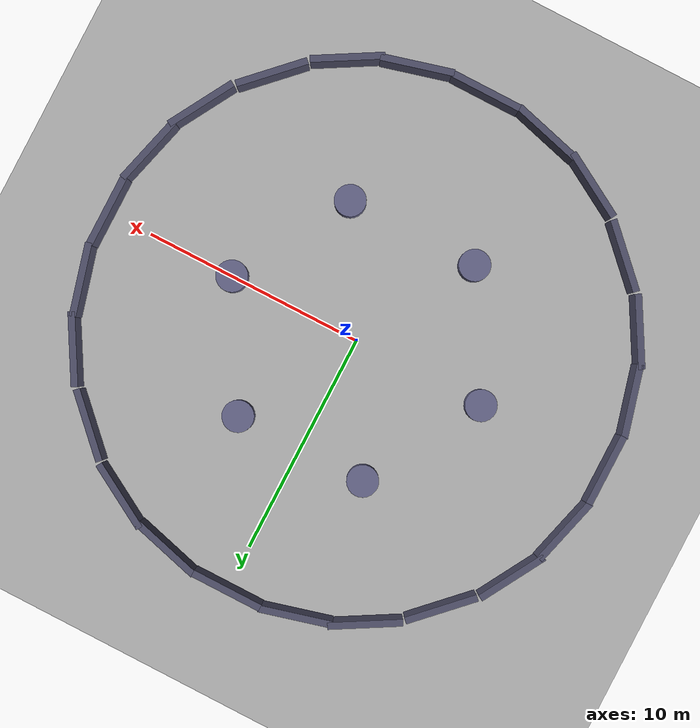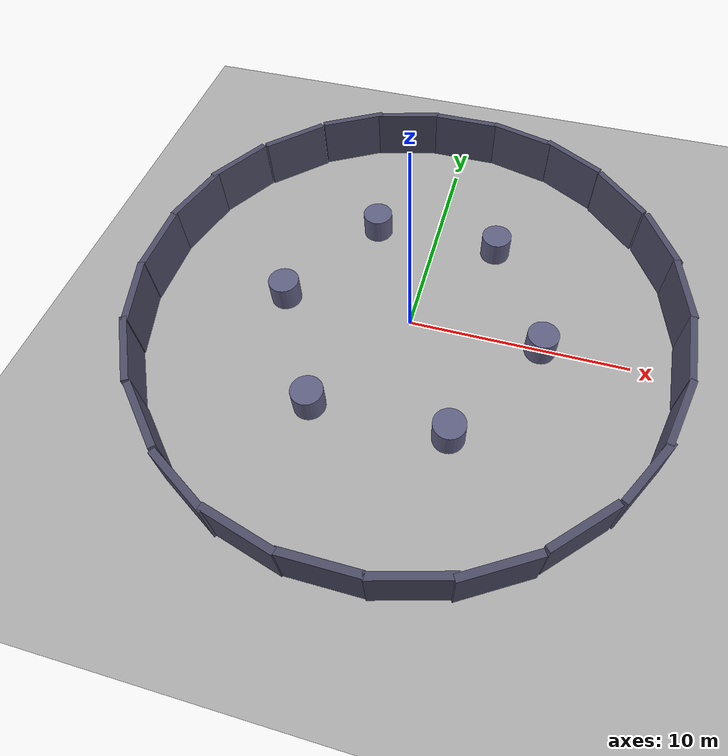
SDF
<?xml version="1.0" ?>
<sdf version="1.6">
  <world name="pursuit_world">

    <gui fullscreen="0">
      <camera name="user_camera">
        <pose>0 0 55 0 1.5707 1.5707</pose>
        <view_controller>orbit</view_controller>
        <projection_type>orthographic</projection_type>
      </camera>
    </gui>

    <physics name="1ms" type="ignored">
      <max_step_size>0.001</max_step_size>
      <real_time_factor>1.5</real_time_factor>
      <real_time_update_rate>1000</real_time_update_rate>
    </physics>

    <plugin filename="gz-sim-physics-system"           name="gz::sim::systems::Physics"/>
    <plugin filename="gz-sim-user-commands-system"     name="gz::sim::systems::UserCommands"/>
    <plugin filename="gz-sim-scene-broadcaster-system" name="gz::sim::systems::SceneBroadcaster"/>
    <plugin filename="gz-sim-contact-system"           name="gz::sim::systems::Contact"/>
    <plugin filename="gz-sim-sensors-system"           name="gz::sim::systems::Sensors">
      <render_engine>ogre2</render_engine>
    </plugin>

    <light type="directional" name="sun">
      <cast_shadows>true</cast_shadows>
      <pose>0 0 20 0 0 0</pose>
      <diffuse>0.85 0.85 0.85 1</diffuse>
      <specular>0.2 0.2 0.2 1</specular>
      <attenuation>
        <range>1000</range>
        <constant>0.9</constant>
        <linear>0.01</linear>
        <quadratic>0.001</quadratic>
      </attenuation>
      <direction>-0.5 0.1 -0.9</direction>
    </light>

    <!-- Ground -->
    <model name="ground_plane">
      <static>true</static>
      <link name="link">
        <collision name="collision">
          <geometry><plane><normal>0 0 1</normal><size>200 200</size></plane></geometry>
        </collision>
        <visual name="visual">
          <geometry><plane><normal>0 0 1</normal><size>200 200</size></plane></geometry>
          <material>
            <ambient>0.68 0.68 0.68 1</ambient>
            <diffuse>0.68 0.68 0.68 1</diffuse>
            <specular>0.68 0.68 0.68 1</specular>
          </material>
        </visual>
      </link>
    </model>

    <model name="circular_boundary">
      <static>true</static>

      <!-- seg 0: angle=0.000 pos=(11.897, 0.000) rot=1.571 -->
      <link name="seg_0"><pose>11.897 0.000 1.25 0 0 1.571</pose>
        <collision name="c"><geometry><box><size>3.2 0.3 2.5</size></box></geometry></collision>
        <visual name="v"><geometry><box><size>3.2 0.3 2.5</size></box></geometry>
          <material><ambient>0.30 0.30 0.40 1</ambient><diffuse>0.30 0.30 0.40 1</diffuse></material></visual>
      </link>

      <!-- seg 1: angle=0.262 pos=(11.530, 3.086) rot=1.833 -->
      <link name="seg_1"><pose>11.530 3.086 1.25 0 0 1.833</pose>
        <collision name="c"><geometry><box><size>3.2 0.3 2.5</size></box></geometry></collision>
        <visual name="v"><geometry><box><size>3.2 0.3 2.5</size></box></geometry>
          <material><ambient>0.30 0.30 0.40 1</ambient><diffuse>0.30 0.30 0.40 1</diffuse></material></visual>
      </link>

      <!-- seg 2: angle=0.524 pos=(10.456, 5.854) rot=2.094 -->
      <link name="seg_2"><pose>10.456 5.854 1.25 0 0 2.094</pose>
        <collision name="c"><geometry><box><size>3.2 0.3 2.5</size></box></geometry></collision>
        <visual name="v"><geometry><box><size>3.2 0.3 2.5</size></box></geometry>
          <material><ambient>0.30 0.30 0.40 1</ambient><diffuse>0.30 0.30 0.40 1</diffuse></material></visual>
      </link>

      <!-- seg 3: angle=0.785 pos=(8.413, 8.413) rot=2.356 -->
      <link name="seg_3"><pose>8.413 8.413 1.25 0 0 2.356</pose>
        <collision name="c"><geometry><box><size>3.2 0.3 2.5</size></box></geometry></collision>
        <visual name="v"><geometry><box><size>3.2 0.3 2.5</size></box></geometry>
          <material><ambient>0.30 0.30 0.40 1</ambient><diffuse>0.30 0.30 0.40 1</diffuse></material></visual>
      </link>

      <!-- seg 4: angle=1.047 pos=(5.854, 10.456) rot=2.618 -->
      <link name="seg_4"><pose>5.854 10.456 1.25 0 0 2.618</pose>
        <collision name="c"><geometry><box><size>3.2 0.3 2.5</size></box></geometry></collision>
        <visual name="v"><geometry><box><size>3.2 0.3 2.5</size></box></geometry>
          <material><ambient>0.30 0.30 0.40 1</ambient><diffuse>0.30 0.30 0.40 1</diffuse></material></visual>
      </link>

      <!-- seg 5: angle=1.309 pos=(3.086, 11.530) rot=2.880 -->
      <link name="seg_5"><pose>3.086 11.530 1.25 0 0 2.880</pose>
        <collision name="c"><geometry><box><size>3.2 0.3 2.5</size></box></geometry></collision>
        <visual name="v"><geometry><box><size>3.2 0.3 2.5</size></box></geometry>
          <material><ambient>0.30 0.30 0.40 1</ambient><diffuse>0.30 0.30 0.40 1</diffuse></material></visual>
      </link>

      <!-- seg 6: angle=1.571 pos=(0.000, 11.897) rot=3.142 -->
      <link name="seg_6"><pose>0.000 11.897 1.25 0 0 3.142</pose>
        <collision name="c"><geometry><box><size>3.2 0.3 2.5</size></box></geometry></collision>
        <visual name="v"><geometry><box><size>3.2 0.3 2.5</size></box></geometry>
          <material><ambient>0.30 0.30 0.40 1</ambient><diffuse>0.30 0.30 0.40 1</diffuse></material></visual>
      </link>

      <!-- seg 7: angle=1.833 pos=(-3.086, 11.530) rot=3.403 -->
      <link name="seg_7"><pose>-3.086 11.530 1.25 0 0 3.403</pose>
        <collision name="c"><geometry><box><size>3.2 0.3 2.5</size></box></geometry></collision>
        <visual name="v"><geometry><box><size>3.2 0.3 2.5</size></box></geometry>
          <material><ambient>0.30 0.30 0.40 1</ambient><diffuse>0.30 0.30 0.40 1</diffuse></material></visual>
      </link>

      <!-- seg 8: angle=2.094 pos=(-5.854, 10.456) rot=3.665 -->
      <link name="seg_8"><pose>-5.854 10.456 1.25 0 0 3.665</pose>
        <collision name="c"><geometry><box><size>3.2 0.3 2.5</size></box></geometry></collision>
        <visual name="v"><geometry><box><size>3.2 0.3 2.5</size></box></geometry>
          <material><ambient>0.30 0.30 0.40 1</ambient><diffuse>0.30 0.30 0.40 1</diffuse></material></visual>
      </link>

      <!-- seg 9: angle=2.356 pos=(-8.413, 8.413) rot=3.927 -->
      <link name="seg_9"><pose>-8.413 8.413 1.25 0 0 3.927</pose>
        <collision name="c"><geometry><box><size>3.2 0.3 2.5</size></box></geometry></collision>
        <visual name="v"><geometry><box><size>3.2 0.3 2.5</size></box></geometry>
          <material><ambient>0.30 0.30 0.40 1</ambient><diffuse>0.30 0.30 0.40 1</diffuse></material></visual>
      </link>

      <!-- seg 10: angle=2.618 pos=(-10.456, 5.854) rot=4.189 -->
      <link name="seg_10"><pose>-10.456 5.854 1.25 0 0 4.189</pose>
        <collision name="c"><geometry><box><size>3.2 0.3 2.5</size></box></geometry></collision>
        <visual name="v"><geometry><box><size>3.2 0.3 2.5</size></box></geometry>
          <material><ambient>0.30 0.30 0.40 1</ambient><diffuse>0.30 0.30 0.40 1</diffuse></material></visual>
      </link>

      <!-- seg 11: angle=2.880 pos=(-11.530, 3.086) rot=4.451 -->
      <link name="seg_11"><pose>-11.530 3.086 1.25 0 0 4.451</pose>
        <collision name="c"><geometry><box><size>3.2 0.3 2.5</size></box></geometry></collision>
        <visual name="v"><geometry><box><size>3.2 0.3 2.5</size></box></geometry>
          <material><ambient>0.30 0.30 0.40 1</ambient><diffuse>0.30 0.30 0.40 1</diffuse></material></visual>
      </link>

      <!-- seg 12: angle=3.142 pos=(-11.897, 0.000) rot=4.712 -->
      <link name="seg_12"><pose>-11.897 0.000 1.25 0 0 4.712</pose>
        <collision name="c"><geometry><box><size>3.2 0.3 2.5</size></box></geometry></collision>
        <visual name="v"><geometry><box><size>3.2 0.3 2.5</size></box></geometry>
          <material><ambient>0.30 0.30 0.40 1</ambient><diffuse>0.30 0.30 0.40 1</diffuse></material></visual>
      </link>

      <!-- seg 13: angle=3.403 pos=(-11.530, -3.086) rot=4.974 -->
      <link name="seg_13"><pose>-11.530 -3.086 1.25 0 0 4.974</pose>
        <collision name="c"><geometry><box><size>3.2 0.3 2.5</size></box></geometry></collision>
        <visual name="v"><geometry><box><size>3.2 0.3 2.5</size></box></geometry>
          <material><ambient>0.30 0.30 0.40 1</ambient><diffuse>0.30 0.30 0.40 1</diffuse></material></visual>
      </link>

      <!-- seg 14: angle=3.665 pos=(-10.456, -5.854) rot=5.236 -->
      <link name="seg_14"><pose>-10.456 -5.854 1.25 0 0 5.236</pose>
        <collision name="c"><geometry><box><size>3.2 0.3 2.5</size></box></geometry></collision>
        <visual name="v"><geometry><box><size>3.2 0.3 2.5</size></box></geometry>
          <material><ambient>0.30 0.30 0.40 1</ambient><diffuse>0.30 0.30 0.40 1</diffuse></material></visual>
      </link>

      <!-- seg 15: angle=3.927 pos=(-8.413, -8.413) rot=5.498 -->
      <link name="seg_15"><pose>-8.413 -8.413 1.25 0 0 5.498</pose>
        <collision name="c"><geometry><box><size>3.2 0.3 2.5</size></box></geometry></collision>
        <visual name="v"><geometry><box><size>3.2 0.3 2.5</size></box></geometry>
          <material><ambient>0.30 0.30 0.40 1</ambient><diffuse>0.30 0.30 0.40 1</diffuse></material></visual>
      </link>

      <!-- seg 16: angle=4.189 pos=(-5.854, -10.456) rot=5.760 -->
      <link name="seg_16"><pose>-5.854 -10.456 1.25 0 0 5.760</pose>
        <collision name="c"><geometry><box><size>3.2 0.3 2.5</size></box></geometry></collision>
        <visual name="v"><geometry><box><size>3.2 0.3 2.5</size></box></geometry>
          <material><ambient>0.30 0.30 0.40 1</ambient><diffuse>0.30 0.30 0.40 1</diffuse></material></visual>
      </link>

      <!-- seg 17: angle=4.451 pos=(-3.086, -11.530) rot=6.021 -->
      <link name="seg_17"><pose>-3.086 -11.530 1.25 0 0 6.021</pose>
        <collision name="c"><geometry><box><size>3.2 0.3 2.5</size></box></geometry></collision>
        <visual name="v"><geometry><box><size>3.2 0.3 2.5</size></box></geometry>
          <material><ambient>0.30 0.30 0.40 1</ambient><diffuse>0.30 0.30 0.40 1</diffuse></material></visual>
      </link>

      <!-- seg 18: angle=4.712 pos=(0.000, -11.897) rot=6.283 -->
      <link name="seg_18"><pose>0.000 -11.897 1.25 0 0 6.283</pose>
        <collision name="c"><geometry><box><size>3.2 0.3 2.5</size></box></geometry></collision>
        <visual name="v"><geometry><box><size>3.2 0.3 2.5</size></box></geometry>
          <material><ambient>0.30 0.30 0.40 1</ambient><diffuse>0.30 0.30 0.40 1</diffuse></material></visual>
      </link>

      <!-- seg 19: angle=4.974 pos=(3.086, -11.530) rot=0.262 -->
      <link name="seg_19"><pose>3.086 -11.530 1.25 0 0 0.262</pose>
        <collision name="c"><geometry><box><size>3.2 0.3 2.5</size></box></geometry></collision>
        <visual name="v"><geometry><box><size>3.2 0.3 2.5</size></box></geometry>
          <material><ambient>0.30 0.30 0.40 1</ambient><diffuse>0.30 0.30 0.40 1</diffuse></material></visual>
      </link>

      <!-- seg 20: angle=5.236 pos=(5.854, -10.456) rot=0.524 -->
      <link name="seg_20"><pose>5.854 -10.456 1.25 0 0 0.524</pose>
        <collision name="c"><geometry><box><size>3.2 0.3 2.5</size></box></geometry></collision>
        <visual name="v"><geometry><box><size>3.2 0.3 2.5</size></box></geometry>
          <material><ambient>0.30 0.30 0.40 1</ambient><diffuse>0.30 0.30 0.40 1</diffuse></material></visual>
      </link>

      <!-- seg 21: angle=5.498 pos=(8.413, -8.413) rot=0.785 -->
      <link name="seg_21"><pose>8.413 -8.413 1.25 0 0 0.785</pose>
        <collision name="c"><geometry><box><size>3.2 0.3 2.5</size></box></geometry></collision>
        <visual name="v"><geometry><box><size>3.2 0.3 2.5</size></box></geometry>
          <material><ambient>0.30 0.30 0.40 1</ambient><diffuse>0.30 0.30 0.40 1</diffuse></material></visual>
      </link>

      <!-- seg 22: angle=5.760 pos=(10.456, -5.854) rot=1.047 -->
      <link name="seg_22"><pose>10.456 -5.854 1.25 0 0 1.047</pose>
        <collision name="c"><geometry><box><size>3.2 0.3 2.5</size></box></geometry></collision>
        <visual name="v"><geometry><box><size>3.2 0.3 2.5</size></box></geometry>
          <material><ambient>0.30 0.30 0.40 1</ambient><diffuse>0.30 0.30 0.40 1</diffuse></material></visual>
      </link>

      <!-- seg 23: angle=6.021 pos=(11.530, -3.086) rot=1.309 -->
      <link name="seg_23"><pose>11.530 -3.086 1.25 0 0 1.309</pose>
        <collision name="c"><geometry><box><size>3.2 0.3 2.5</size></box></geometry></collision>
        <visual name="v"><geometry><box><size>3.2 0.3 2.5</size></box></geometry>
          <material><ambient>0.30 0.30 0.40 1</ambient><diffuse>0.30 0.30 0.40 1</diffuse></material></visual>
      </link>

    </model>

    <model name="pillars">
      <static>true</static>

      <link name="pillar_0">
        <pose>6.0 0.0 0 0 0 0</pose>
        <collision name="c"><geometry><cylinder><radius>0.7</radius><length>2.5</length></cylinder></geometry></collision>
        <visual name="v"><geometry><cylinder><radius>0.7</radius><length>2.5</length></cylinder></geometry>
          <material><ambient>0.38 0.38 0.52 1</ambient><diffuse>0.38 0.38 0.52 1</diffuse></material></visual>
      </link>

      <link name="pillar_1">
        <pose>3.0 5.196 0 0 0 0</pose>
        <collision name="c"><geometry><cylinder><radius>0.7</radius><length>2.5</length></cylinder></geometry></collision>
        <visual name="v"><geometry><cylinder><radius>0.7</radius><length>2.5</length></cylinder></geometry>
          <material><ambient>0.38 0.38 0.52 1</ambient><diffuse>0.38 0.38 0.52 1</diffuse></material></visual>
      </link>

      <link name="pillar_2">
        <pose>-3.0 5.196 0 0 0 0</pose>
        <collision name="c"><geometry><cylinder><radius>0.7</radius><length>2.5</length></cylinder></geometry></collision>
        <visual name="v"><geometry><cylinder><radius>0.7</radius><length>2.5</length></cylinder></geometry>
          <material><ambient>0.38 0.38 0.52 1</ambient><diffuse>0.38 0.38 0.52 1</diffuse></material></visual>
      </link>

      <link name="pillar_3">
        <pose>-6.0 0.0 0 0 0 0</pose>
        <collision name="c"><geometry><cylinder><radius>0.7</radius><length>2.5</length></cylinder></geometry></collision>
        <visual name="v"><geometry><cylinder><radius>0.7</radius><length>2.5</length></cylinder></geometry>
          <material><ambient>0.38 0.38 0.52 1</ambient><diffuse>0.38 0.38 0.52 1</diffuse></material></visual>
      </link>

      <link name="pillar_4">
        <pose>-3.0 -5.196 0 0 0 0</pose>
        <collision name="c"><geometry><cylinder><radius>0.7</radius><length>2.5</length></cylinder></geometry></collision>
        <visual name="v"><geometry><cylinder><radius>0.7</radius><length>2.5</length></cylinder></geometry>
          <material><ambient>0.38 0.38 0.52 1</ambient><diffuse>0.38 0.38 0.52 1</diffuse></material></visual>
      </link>

      <link name="pillar_5">
        <pose>3.0 -5.196 0 0 0 0</pose>
        <collision name="c"><geometry><cylinder><radius>0.7</radius><length>2.5</length></cylinder></geometry></collision>
        <visual name="v"><geometry><cylinder><radius>0.7</radius><length>2.5</length></cylinder></geometry>
          <material><ambient>0.38 0.38 0.52 1</ambient><diffuse>0.38 0.38 0.52 1</diffuse></material></visual>
      </link>

    </model>

  </world>
</sdf>
